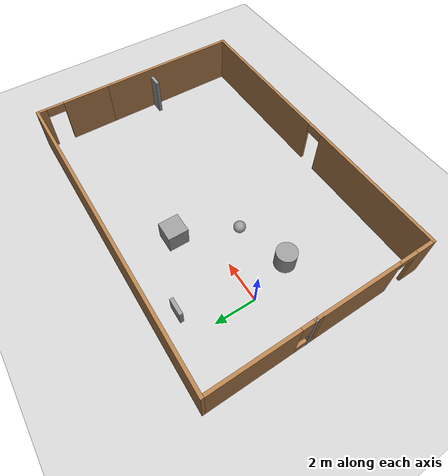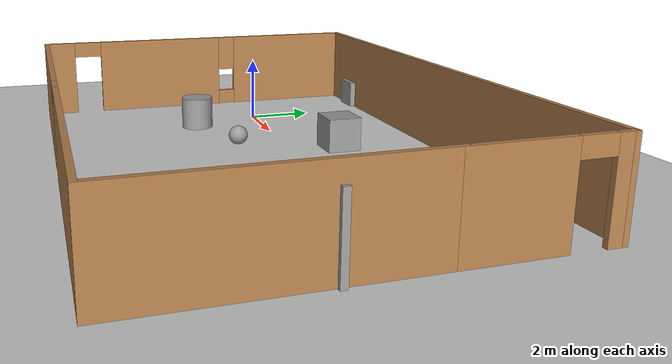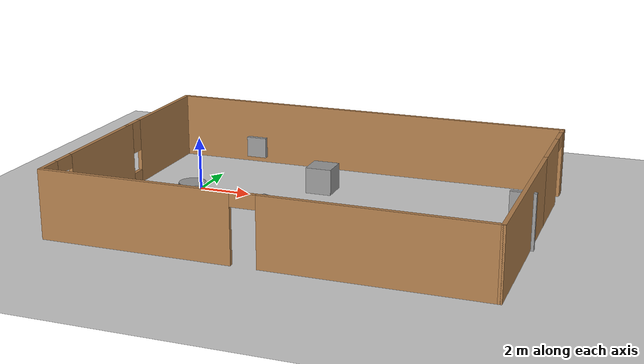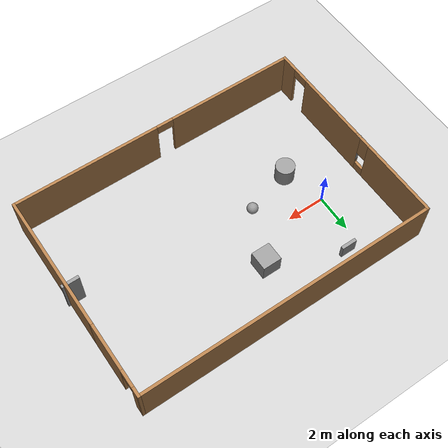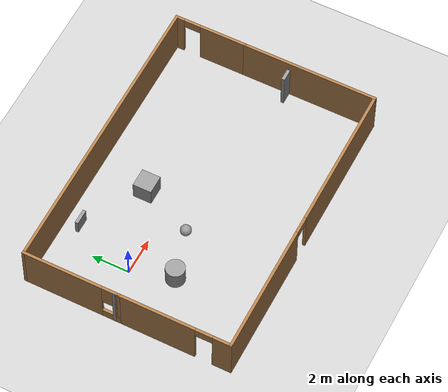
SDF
<sdf version="1.7">
 <world name="default">
  <light name="sun" type="directional">
   <pose>0 0 10 0 -0 0</pose>
   <diffuse>0.8 0.8 0.8 1</diffuse>
   <specular>0.2 0.2 0.2 1</specular>
   <attenuation>
    <range>1000</range>
    <constant>0.9</constant>
    <linear>0.01</linear>
    <quadratic>0.001</quadratic>
   </attenuation>
   <direction>-0.5 0.1 -0.9</direction>
   <spot><inner_angle>0</inner_angle><outer_angle>0</outer_angle><falloff>0</falloff></spot>
  </light>
  <model name="ground_plane">
   <static>1</static>
   <link name="link">
    <collision name="collision">
     <geometry><plane><normal>0 0 1</normal><size>100 100</size></plane></geometry>
     <surface>
      <contact><collide_bitmask>65535</collide_bitmask></contact>
      <friction><ode><mu>100</mu><mu2>50</mu2></ode></friction>
     </surface>
    </collision>
    <visual name="visual">
     <cast_shadows>0</cast_shadows>
     <geometry><plane><normal>0 0 1</normal><size>100 100</size></plane></geometry>
     <material>
      <script><uri>file://media/materials/scripts/gazebo.material</uri><name>Gazebo/Grey</name></script>
     </material>
    </visual>
   </link>
  </model>
  <gravity>0 0 -9.8</gravity>
  <magnetic_field>6e-06 2.3e-05 -4.2e-05</magnetic_field>
  <atmosphere type="adiabatic"/>
  <physics type="ode">
   <max_step_size>0.001</max_step_size>
   <real_time_factor>1</real_time_factor>
   <real_time_update_rate>1000</real_time_update_rate>
  </physics>
  <scene><ambient>0.4 0.4 0.4 1</ambient><background>0.7 0.7 0.7 1</background><shadows>1</shadows></scene>
  <audio><device>default</device></audio>
  <spherical_coordinates>
   <surface_model>EARTH_WGS84</surface_model>
   <latitude_deg>0</latitude_deg>
   <longitude_deg>0</longitude_deg>
   <elevation>0</elevation>
   <heading_deg>0</heading_deg>
  </spherical_coordinates>
  <model name="test">
   <pose>5.205 -1.295 0 0 -0 0</pose>
   <link name="Door_0">
    <collision name="Door_0_Collision">
     <geometry><box><size>0.9 0.17 2</size></box></geometry>
     <pose>0 0 1 0 -0 0</pose>
    </collision>
    <visual name="Door_0_Visual">
     <pose>0 0 1 0 -0 0</pose>
     <geometry><box><size>0.9 0.17 2</size></box></geometry>
     <material>
      <script><uri>file://media/materials/scripts/gazebo.material</uri><name>Gazebo/Grey</name></script>
     </material>
    </visual>
    <pose>7.53692 -0.829465 0 0 -0 0</pose>
   </link>
   <link name="Wall_0">
    <collision name="Wall_0_Collision">
     <geometry><box><size>0.16 0.15 2.5</size></box></geometry>
     <pose>0 0 1.25 0 -0 0</pose>
    </collision>
    <visual name="Wall_0_Visual">
     <pose>0 0 1.25 0 -0 0</pose>
     <geometry><box><size>0.16 0.15 2.5</size></box></geometry>
     <material>
      <script><uri>file://media/materials/scripts/gazebo.material</uri><name>Gazebo/Grey</name></script>
      <ambient>1 1 1 1</ambient>
     </material>
     <meta><layer>0</layer></meta>
    </visual>
    <pose>-7.8 0.625 0 0 -0 0</pose>
   </link>
   <link name="Wall_1">
    <pose>-7.795 -2.425 0 0 -0 -1.5708</pose>
    <visual name="Wall_1_Visual_0">
     <pose>-0.957855 0 1.25 0 -0 0</pose>
     <geometry><box><size>4.33429 0.15 2.5</size></box></geometry>
     <material>
      <script><uri>file://media/materials/scripts/gazebo.material</uri><name>Gazebo/Wood</name></script>
      <ambient>1 1 1 1</ambient>
     </material>
     <meta><layer>0</layer></meta>
    </visual>
    <collision name="Wall_1_Collision_0">
     <geometry><box><size>4.33429 0.15 2.5</size></box></geometry>
     <pose>-0.957855 0 1.25 0 -0 0</pose>
    </collision>
    <visual name="Wall_1_Visual_1">
     <pose>2.61714 0 1.25 0 -0 0</pose>
     <geometry><box><size>1.01571 0.15 2.5</size></box></geometry>
     <material>
      <script><uri>file://media/materials/scripts/gazebo.material</uri><name>Gazebo/Wood</name></script>
      <ambient>1 1 1 1</ambient>
     </material>
     <meta><layer>0</layer></meta>
    </visual>
    <collision name="Wall_1_Collision_1">
     <geometry><box><size>1.01571 0.15 2.5</size></box></geometry>
     <pose>2.61714 0 1.25 0 -0 0</pose>
    </collision>
    <visual name="Wall_1_Visual_2">
     <pose>1.65929 0 2.25 0 -0 0</pose>
     <geometry><box><size>0.9 0.15 0.5</size></box></geometry>
     <material>
      <script><uri>file://media/materials/scripts/gazebo.material</uri><name>Gazebo/Wood</name></script>
      <ambient>1 1 1 1</ambient>
     </material>
     <meta><layer>0</layer></meta>
    </visual>
    <collision name="Wall_1_Collision_2">
     <geometry><box><size>0.9 0.15 0.5</size></box></geometry>
     <pose>1.65929 0 2.25 0 -0 0</pose>
    </collision>
   </link>
   <link name="Wall_2">
    <pose>0.005 -5.475 0 0 -0 0</pose>
    <visual name="Wall_2_Visual_0">
     <pose>-4.3837 0 1.25 0 -0 0</pose>
     <geometry><box><size>6.9826 0.15 2.5</size></box></geometry>
     <material>
      <script><uri>file://media/materials/scripts/gazebo.material</uri><name>Gazebo/Wood</name></script>
      <ambient>1 1 1 1</ambient>
     </material>
     <meta><layer>0</layer></meta>
    </visual>
    <collision name="Wall_2_Collision_0">
     <geometry><box><size>6.9826 0.15 2.5</size></box></geometry>
     <pose>-4.3837 0 1.25 0 -0 0</pose>
    </collision>
    <visual name="Wall_2_Visual_1">
     <pose>3.9413 0 1.25 0 -0 0</pose>
     <geometry><box><size>7.8674 0.15 2.5</size></box></geometry>
     <material>
      <script><uri>file://media/materials/scripts/gazebo.material</uri><name>Gazebo/Wood</name></script>
      <ambient>1 1 1 1</ambient>
     </material>
     <meta><layer>0</layer></meta>
    </visual>
    <collision name="Wall_2_Collision_1">
     <geometry><box><size>7.8674 0.15 2.5</size></box></geometry>
     <pose>3.9413 0 1.25 0 -0 0</pose>
    </collision>
    <visual name="Wall_2_Visual_2">
     <pose>-0.442401 0 2.25 0 -0 0</pose>
     <geometry><box><size>0.9 0.15 0.5</size></box></geometry>
     <material>
      <script><uri>file://media/materials/scripts/gazebo.material</uri><name>Gazebo/Wood</name></script>
      <ambient>1 1 1 1</ambient>
     </material>
     <meta><layer>0</layer></meta>
    </visual>
    <collision name="Wall_2_Collision_2">
     <geometry><box><size>0.9 0.15 0.5</size></box></geometry>
     <pose>-0.442401 0 2.25 0 -0 0</pose>
    </collision>
   </link>
   <link name="Wall_3">
    <collision name="Wall_3_Collision">
     <geometry><box><size>7.25 0.15 2.5</size></box></geometry>
     <pose>0 0 1.25 0 -0 0</pose>
    </collision>
    <visual name="Wall_3_Visual">
     <pose>0 0 1.25 0 -0 0</pose>
     <geometry><box><size>7.25 0.15 2.5</size></box></geometry>
     <material>
      <script><uri>file://media/materials/scripts/gazebo.material</uri><name>Gazebo/Wood</name></script>
      <ambient>1 1 1 1</ambient>
     </material>
     <meta><layer>0</layer></meta>
    </visual>
    <pose>7.805 -1.925 0 0 -0 1.5708</pose>
   </link>
   <link name="Wall_4">
    <pose>7.805 3.55 0 0 -0 1.5708</pose>
    <visual name="Wall_4_Visual_0">
     <pose>-0.709159 0 1.25 0 -0 0</pose>
     <geometry><box><size>2.58168 0.15 2.5</size></box></geometry>
     <material>
      <script><uri>file://media/materials/scripts/gazebo.material</uri><name>Gazebo/Wood</name></script>
      <ambient>1 1 1 1</ambient>
     </material>
     <meta><layer>0</layer></meta>
    </visual>
    <collision name="Wall_4_Collision_0">
     <geometry><box><size>2.58168 0.15 2.5</size></box></geometry>
     <pose>-0.709159 0 1.25 0 -0 0</pose>
    </collision>
    <visual name="Wall_4_Visual_1">
     <pose>1.74084 0 1.25 0 -0 0</pose>
     <geometry><box><size>0.518319 0.15 2.5</size></box></geometry>
     <material>
      <script><uri>file://media/materials/scripts/gazebo.material</uri><name>Gazebo/Wood</name></script>
      <ambient>1 1 1 1</ambient>
     </material>
     <meta><layer>0</layer></meta>
    </visual>
    <collision name="Wall_4_Collision_1">
     <geometry><box><size>0.518319 0.15 2.5</size></box></geometry>
     <pose>1.74084 0 1.25 0 -0 0</pose>
    </collision>
    <visual name="Wall_4_Visual_2">
     <pose>1.03168 0 2.25 0 -0 0</pose>
     <geometry><box><size>0.9 0.15 0.5</size></box></geometry>
     <material>
      <script><uri>file://media/materials/scripts/gazebo.material</uri><name>Gazebo/Wood</name></script>
      <ambient>1 1 1 1</ambient>
     </material>
     <meta><layer>0</layer></meta>
    </visual>
    <collision name="Wall_4_Collision_2">
     <geometry><box><size>0.9 0.15 0.5</size></box></geometry>
     <pose>1.03168 0 2.25 0 -0 0</pose>
    </collision>
   </link>
   <link name="Wall_5">
    <collision name="Wall_5_Collision">
     <geometry><box><size>15.75 0.15 2.5</size></box></geometry>
     <pose>0 0 1.25 0 -0 0</pose>
    </collision>
    <visual name="Wall_5_Visual">
     <pose>0 0 1.25 0 -0 0</pose>
     <geometry><box><size>15.75 0.15 2.5</size></box></geometry>
     <material>
      <script><uri>file://media/materials/scripts/gazebo.material</uri><name>Gazebo/Wood</name></script>
      <ambient>1 1 1 1</ambient>
     </material>
     <meta><layer>0</layer></meta>
    </visual>
    <pose>0.005 5.475 0 0 -0 3.14159</pose>
   </link>
   <link name="Wall_6">
    <pose>-7.795 2.925 0 0 -0 -1.5708</pose>
    <visual name="Wall_6_Visual_0">
     <pose>-0.489659 0 1.25 0 -0 0</pose>
     <geometry><box><size>4.27068 0.15 2.5</size></box></geometry>
     <material>
      <script><uri>file://media/materials/scripts/gazebo.material</uri><name>Gazebo/Wood</name></script>
      <ambient>1 1 1 1</ambient>
     </material>
     <meta><layer>0</layer></meta>
    </visual>
    <collision name="Wall_6_Collision_0">
     <geometry><box><size>4.27068 0.15 2.5</size></box></geometry>
     <pose>-0.489659 0 1.25 0 -0 0</pose>
    </collision>
    <visual name="Wall_6_Visual_1">
     <pose>2.13534 0 0.25 0 -0 0</pose>
     <geometry><box><size>0.979318 0.15 0.5</size></box></geometry>
     <material>
      <script><uri>file://media/materials/scripts/gazebo.material</uri><name>Gazebo/Wood</name></script>
      <ambient>1 1 1 1</ambient>
     </material>
     <meta><layer>0</layer></meta>
    </visual>
    <collision name="Wall_6_Collision_1">
     <geometry><box><size>0.979318 0.15 0.5</size></box></geometry>
     <pose>2.13534 0 0.25 0 -0 0</pose>
    </collision>
    <visual name="Wall_6_Visual_2">
     <pose>2.53534 0 1.5 0 -0 0</pose>
     <geometry><box><size>0.179318 0.15 2</size></box></geometry>
     <material>
      <script><uri>file://media/materials/scripts/gazebo.material</uri><name>Gazebo/Wood</name></script>
      <ambient>1 1 1 1</ambient>
     </material>
     <meta><layer>0</layer></meta>
    </visual>
    <collision name="Wall_6_Collision_2">
     <geometry><box><size>0.179318 0.15 2</size></box></geometry>
     <pose>2.53534 0 1.5 0 -0 0</pose>
    </collision>
    <visual name="Wall_6_Visual_3">
     <pose>2.04568 0 1.9 0 -0 0</pose>
     <geometry><box><size>0.8 0.15 1.2</size></box></geometry>
     <material>
      <script><uri>file://media/materials/scripts/gazebo.material</uri><name>Gazebo/Wood</name></script>
      <ambient>1 1 1 1</ambient>
     </material>
     <meta><layer>0</layer></meta>
    </visual>
    <collision name="Wall_6_Collision_3">
     <geometry><box><size>0.8 0.15 1.2</size></box></geometry>
     <pose>2.04568 0 1.9 0 -0 0</pose>
    </collision>
   </link>
   <link name="Window_1">
    <collision name="Window_1_Collision">
     <geometry><box><size>0.8 0.17 0.8</size></box></geometry>
     <pose>0 0 0.4 0 -0 0</pose>
    </collision>
    <visual name="Window_1_Visual">
     <pose>0 0 0.4 0 -0 0</pose>
     <geometry><box><size>0.8 0.17 0.8</size></box></geometry>
     <material>
      <script><uri>file://media/materials/scripts/gazebo.material</uri><name>Gazebo/Grey</name></script>
     </material>
    </visual>
    <pose>-4.18045 4.45962 0.5 0 -0 0</pose>
   </link>
   <static>1</static>
  </model>
  <model name="unit_box">
   <pose>4.46574 1.39316 0.5 -0 -0 -0</pose>
   <link name="link">
    <inertial>
     <mass>1</mass>
     <inertia>
      <ixx>0.166667</ixx>
      <ixy>0</ixy>
      <ixz>0</ixz>
      <iyy>0.166667</iyy>
      <iyz>0</iyz>
      <izz>0.166667</izz>
     </inertia>
    </inertial>
    <collision name="collision"><geometry><box><size>1 1 1</size></box></geometry></collision>
    <visual name="visual">
     <geometry><box><size>1 1 1</size></box></geometry>
     <material>
      <script><name>Gazebo/Grey</name><uri>file://media/materials/scripts/gazebo.material</uri></script>
     </material>
    </visual>
   </link>
  </model>
  <model name="unit_sphere">
   <pose>3.22187 -1.40509 0.291192 0 -0 0</pose>
   <link name="link">
    <inertial>
     <mass>1</mass>
     <inertia><ixx>0.1</ixx><ixy>0</ixy><ixz>0</ixz><iyy>0.1</iyy><iyz>0</iyz><izz>0.1</izz></inertia>
    </inertial>
    <collision name="collision"><geometry><sphere><radius>0.291192</radius></sphere></geometry></collision>
    <visual name="visual">
     <geometry><sphere><radius>0.291192</radius></sphere></geometry>
     <material>
      <script><name>Gazebo/Grey</name><uri>file://media/materials/scripts/gazebo.material</uri></script>
     </material>
    </visual>
   </link>
  </model>
  <model name="unit_cylinder">
   <pose>0.71599 -2.141 0.499997 3e-06 4e-06 -0</pose>
   <link name="link">
    <inertial>
     <mass>1</mass>
     <inertia><ixx>0.145833</ixx><ixy>0</ixy><ixz>0</ixz><iyy>0.145833</iyy><iyz>0</iyz><izz>0.125</izz></inertia>
    </inertial>
    <collision name="collision">
     <geometry><cylinder><radius>0.5</radius><length>1</length></cylinder></geometry>
    </collision>
    <visual name="visual">
     <geometry><cylinder><radius>0.5</radius><length>1</length></cylinder></geometry>
     <material>
      <script><name>Gazebo/Grey</name><uri>file://media/materials/scripts/gazebo.material</uri></script>
     </material>
    </visual>
   </link>
  </model>
 </world>
</sdf>
